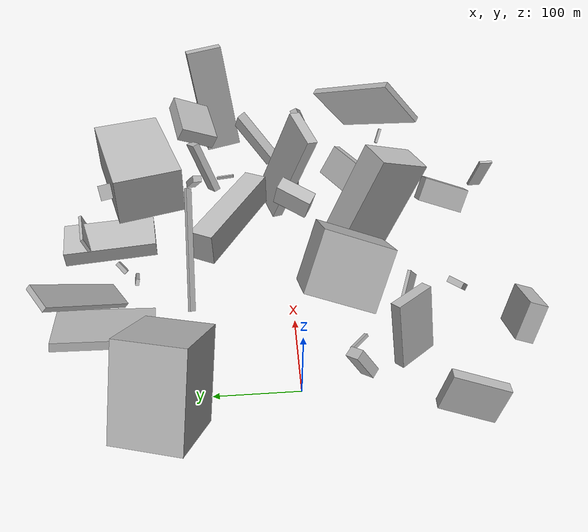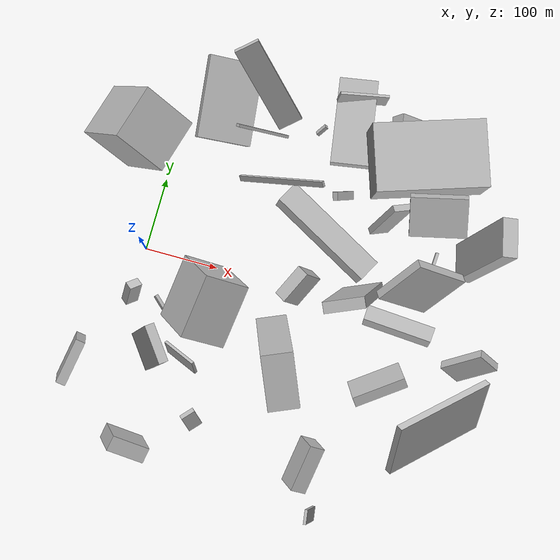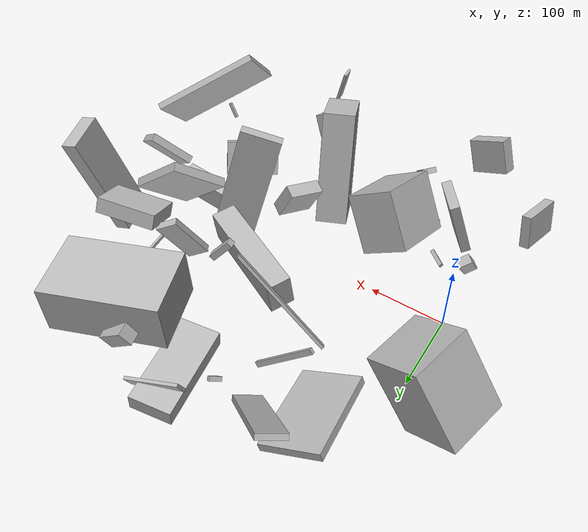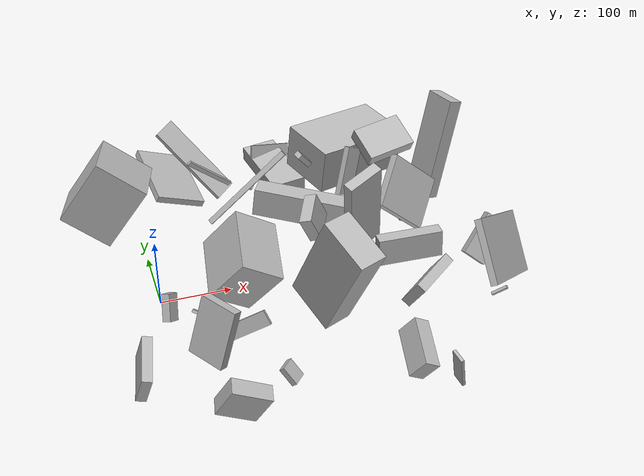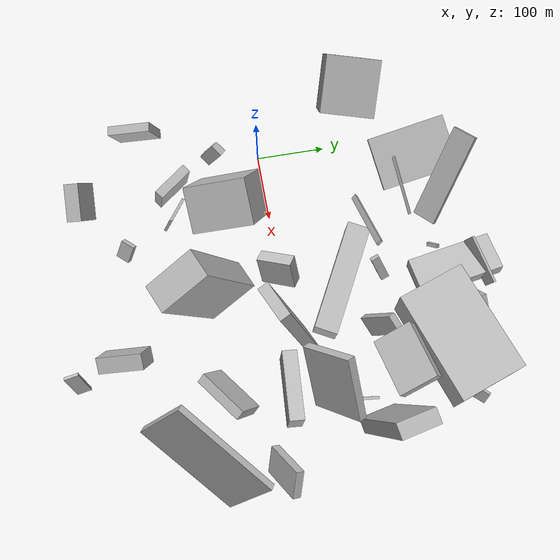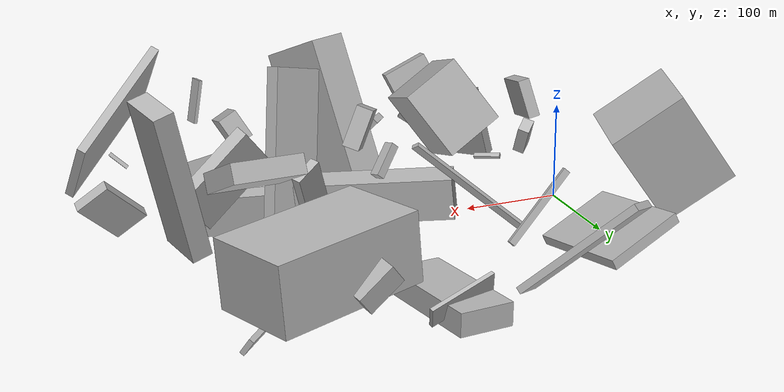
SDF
<sdf version="1.6">
 <world name="default">
  <scene>
   <sky><clouds><speed>12</speed></clouds></sky>
   <ambient>0.4 0.4 0.4 1</ambient>
   <background>0.7 0.7 0.7 1</background>
   <shadows>1</shadows>
  </scene>
  <gravity>0 0 -9.8066</gravity>
  <magnetic_field>6e-06 2.3e-05 -4.2e-05</magnetic_field>
  <physics default="0" name="default_physics" type="ode">
   <ode>
    <solver>
     <type>quick</type>
     <iters>10</iters>
     <sor>1.0</sor>
     <use_dynamic_moi_rescaling>0</use_dynamic_moi_rescaling>
    </solver>
    <constraints>
     <cfm>0</cfm>
     <erp>0.2</erp>
     <contact_max_correcting_vel>100</contact_max_correcting_vel>
     <contact_surface_layer>0.001</contact_surface_layer>
    </constraints>
   </ode>
   <max_step_size>0.004</max_step_size>
   <real_time_factor>1</real_time_factor>
   <real_time_update_rate>250</real_time_update_rate>
  </physics>
  <light name="sun" type="directional">
   <pose>0 0 10 0 0 0</pose>
   <diffuse>0.8 0.8 0.8 1</diffuse>
   <specular>0.2 0.2 0.2 1</specular>
   <attenuation>
    <range>1000</range>
    <constant>0.9</constant>
    <linear>0.01</linear>
    <quadratic>0.001</quadratic>
   </attenuation>
   <direction>-0.5 0.1 -0.9</direction>
  </light>
  <model name="building_1">
   <static>0</static>
   <pose>183.7656824990483 215.1772677772301 13.18505161402205 0.868023495289485 0.6341393850057752 1.979506501012383</pose>
   <link name="link">
    <gravity>0</gravity>
    <pose>0 0 8.5 0 0 0</pose>
    <collision name="collision"><geometry><box><size>6 5 17</size></box></geometry></collision>
    <visual name="visual">
     <cast_shadows>0</cast_shadows>
     <geometry><box><size>6 5 17</size></box></geometry>
     <material>
      <script>
       <uri>model://HANNAS_wall/materials/scripts</uri>
       <uri>model://HANNAS_wall/materials/textures</uri>
       <name>vrc/HANNAS_wall</name>
      </script>
     </material>
    </visual>
   </link>
  </model>
  <model name="building_2">
   <static>0</static>
   <pose>56.90916947968519 217.05032457564207 52.09813051518027 0.4070113594931677 -0.15752957323010147 1.6744178624201516</pose>
   <link name="link">
    <gravity>0</gravity>
    <pose>0 0 5.0 0 0 0</pose>
    <collision name="collision"><geometry><box><size>111 76 10</size></box></geometry></collision>
    <visual name="visual">
     <cast_shadows>0</cast_shadows>
     <geometry><box><size>111 76 10</size></box></geometry>
     <material>
      <script>
       <uri>model://HANNAS_wall/materials/scripts</uri>
       <uri>model://HANNAS_wall/materials/textures</uri>
       <name>vrc/HANNAS_wall</name>
      </script>
     </material>
    </visual>
   </link>
  </model>
  <model name="building_3">
   <static>0</static>
   <pose>237.85646500646104 180.78357534931027 27.24427620281396 0.8002739959468044 -1.5165271408123409 -2.2192195408382007</pose>
   <link name="link">
    <gravity>0</gravity>
    <pose>0 0 59.0 0 0 0</pose>
    <collision name="collision"><geometry><box><size>22 53 118</size></box></geometry></collision>
    <visual name="visual">
     <cast_shadows>0</cast_shadows>
     <geometry><box><size>22 53 118</size></box></geometry>
     <material>
      <script>
       <uri>model://HANNAS_wall/materials/scripts</uri>
       <uri>model://HANNAS_wall/materials/textures</uri>
       <name>vrc/HANNAS_wall</name>
      </script>
     </material>
    </visual>
   </link>
  </model>
  <model name="building_4">
   <static>0</static>
   <pose>130.29907278423997 -55.79213230706333 76.49266613910022 0.9673091260209584 0.313764300948583 -1.720796992951557</pose>
   <link name="link">
    <gravity>0</gravity>
    <pose>0 0 31.5 0 0 0</pose>
    <collision name="collision"><geometry><box><size>86 76 63</size></box></geometry></collision>
    <visual name="visual">
     <cast_shadows>0</cast_shadows>
     <geometry><box><size>86 76 63</size></box></geometry>
     <material>
      <script>
       <uri>model://HANNAS_wall/materials/scripts</uri>
       <uri>model://HANNAS_wall/materials/textures</uri>
       <name>vrc/HANNAS_wall</name>
      </script>
     </material>
    </visual>
   </link>
  </model>
  <model name="building_5">
   <static>0</static>
   <pose>273.6691745279529 -224.877068779237 45.647982030382884 -2.6077654432072617 -0.9615146072199113 -0.6024746102903734</pose>
   <link name="link">
    <gravity>0</gravity>
    <pose>0 0 11.0 0 0 0</pose>
    <collision name="collision"><geometry><box><size>33 65 22</size></box></geometry></collision>
    <visual name="visual">
     <cast_shadows>0</cast_shadows>
     <geometry><box><size>33 65 22</size></box></geometry>
     <material>
      <script>
       <uri>model://HANNAS_wall/materials/scripts</uri>
       <uri>model://HANNAS_wall/materials/textures</uri>
       <name>vrc/HANNAS_wall</name>
      </script>
     </material>
    </visual>
   </link>
  </model>
  <model name="building_6">
   <static>0</static>
   <pose>52.31175902428168 -126.8130893681896 46.57757984748474 0.2684290313560819 -1.2580120421396006 0.3782548450310599</pose>
   <link name="link">
    <gravity>0</gravity>
    <pose>0 0 6.5 0 0 0</pose>
    <collision name="collision"><geometry><box><size>83 53 13</size></box></geometry></collision>
    <visual name="visual">
     <cast_shadows>0</cast_shadows>
     <geometry><box><size>83 53 13</size></box></geometry>
     <material>
      <script>
       <uri>model://HANNAS_wall/materials/scripts</uri>
       <uri>model://HANNAS_wall/materials/textures</uri>
       <name>vrc/HANNAS_wall</name>
      </script>
     </material>
    </visual>
   </link>
  </model>
  <model name="building_7">
   <static>0</static>
   <pose>406.91107949246066 231.18696468238056 64.78650028004029 0.7598142063750126 -1.4962990023129554 -0.4368292424909095</pose>
   <link name="link">
    <gravity>0</gravity>
    <pose>0 0 75.0 0 0 0</pose>
    <collision name="collision"><geometry><box><size>67 91 150</size></box></geometry></collision>
    <visual name="visual">
     <cast_shadows>0</cast_shadows>
     <geometry><box><size>67 91 150</size></box></geometry>
     <material>
      <script>
       <uri>model://HANNAS_wall/materials/scripts</uri>
       <uri>model://HANNAS_wall/materials/textures</uri>
       <name>vrc/HANNAS_wall</name>
      </script>
     </material>
    </visual>
   </link>
  </model>
  <model name="building_8">
   <static>0</static>
   <pose>430.0526990817268 122.81994496282891 115.9324039697531 1.4802108564050804 0.2553690042142439 0.19338215080818283</pose>
   <link name="link">
    <gravity>0</gravity>
    <pose>0 0 25.0 0 0 0</pose>
    <collision name="collision"><geometry><box><size>20 150 50</size></box></geometry></collision>
    <visual name="visual">
     <cast_shadows>0</cast_shadows>
     <geometry><box><size>20 150 50</size></box></geometry>
     <material>
      <script>
       <uri>model://HANNAS_wall/materials/scripts</uri>
       <uri>model://HANNAS_wall/materials/textures</uri>
       <name>vrc/HANNAS_wall</name>
      </script>
     </material>
    </visual>
   </link>
  </model>
  <model name="building_9">
   <static>0</static>
   <pose>315.45439584504356 172.39535299972084 63.69635908313899 -1.7322683854008585 -0.903244554003196 0.32324809647465974</pose>
   <link name="link">
    <gravity>0</gravity>
    <pose>0 0 43.5 0 0 0</pose>
    <collision name="collision"><geometry><box><size>21 40 87</size></box></geometry></collision>
    <visual name="visual">
     <cast_shadows>0</cast_shadows>
     <geometry><box><size>21 40 87</size></box></geometry>
     <material>
      <script>
       <uri>model://HANNAS_wall/materials/scripts</uri>
       <uri>model://HANNAS_wall/materials/textures</uri>
       <name>vrc/HANNAS_wall</name>
      </script>
     </material>
    </visual>
   </link>
  </model>
  <model name="building_10">
   <static>0</static>
   <pose>-11.710465767601436 129.25660022159343 75.61717747808243 -0.12285618103321794 -0.9519402527596168 -0.16509118862528666</pose>
   <link name="link">
    <gravity>0</gravity>
    <pose>0 0 39.5 0 0 0</pose>
    <collision name="collision"><geometry><box><size>102 75 79</size></box></geometry></collision>
    <visual name="visual">
     <cast_shadows>0</cast_shadows>
     <geometry><box><size>102 75 79</size></box></geometry>
     <material>
      <script>
       <uri>model://HANNAS_wall/materials/scripts</uri>
       <uri>model://HANNAS_wall/materials/textures</uri>
       <name>vrc/HANNAS_wall</name>
      </script>
     </material>
    </visual>
   </link>
  </model>
  <model name="building_11">
   <static>0</static>
   <pose>306.55035668294823 -275.4601926129868 56.57310319305215 -1.9721163946193394 -1.3393458660531432 -2.6087009277239046</pose>
   <link name="link">
    <gravity>0</gravity>
    <pose>0 0 9.5 0 0 0</pose>
    <collision name="collision"><geometry><box><size>49 4 19</size></box></geometry></collision>
    <visual name="visual">
     <cast_shadows>0</cast_shadows>
     <geometry><box><size>49 4 19</size></box></geometry>
     <material>
      <script>
       <uri>model://HANNAS_wall/materials/scripts</uri>
       <uri>model://HANNAS_wall/materials/textures</uri>
       <name>vrc/HANNAS_wall</name>
      </script>
     </material>
    </visual>
   </link>
  </model>
  <model name="building_12">
   <static>0</static>
   <pose>234.62433607947577 -98.77151466072898 85.74702960487788 1.5740414412247332 -1.1503636839526479 -1.16973711844705</pose>
   <link name="link">
    <gravity>0</gravity>
    <pose>0 0 20.5 0 0 0</pose>
    <collision name="collision"><geometry><box><size>150 75 41</size></box></geometry></collision>
    <visual name="visual">
     <cast_shadows>0</cast_shadows>
     <geometry><box><size>150 75 41</size></box></geometry>
     <material>
      <script>
       <uri>model://HANNAS_wall/materials/scripts</uri>
       <uri>model://HANNAS_wall/materials/textures</uri>
       <name>vrc/HANNAS_wall</name>
      </script>
     </material>
    </visual>
   </link>
  </model>
  <model name="building_13">
   <static>0</static>
   <pose>230.3400113575669 268.7258989973421 32.768284998335474 0.24769757803950357 0.2976752037097686 1.903202466230959</pose>
   <link name="link">
    <gravity>0</gravity>
    <pose>0 0 10.0 0 0 0</pose>
    <collision name="collision"><geometry><box><size>4 69 20</size></box></geometry></collision>
    <visual name="visual">
     <cast_shadows>0</cast_shadows>
     <geometry><box><size>4 69 20</size></box></geometry>
     <material>
      <script>
       <uri>model://HANNAS_wall/materials/scripts</uri>
       <uri>model://HANNAS_wall/materials/textures</uri>
       <name>vrc/HANNAS_wall</name>
      </script>
     </material>
    </visual>
   </link>
  </model>
  <model name="building_14">
   <static>0</static>
   <pose>438.4126754954425 -134.5976643888128 99.17368791053687 2.1105194214577434 -0.4654145089921328 -2.406675912722828</pose>
   <link name="link">
    <gravity>0</gravity>
    <pose>0 0 4.5 0 0 0</pose>
    <collision name="collision"><geometry><box><size>150 85 9</size></box></geometry></collision>
    <visual name="visual">
     <cast_shadows>0</cast_shadows>
     <geometry><box><size>150 85 9</size></box></geometry>
     <material>
      <script>
       <uri>model://HANNAS_wall/materials/scripts</uri>
       <uri>model://HANNAS_wall/materials/textures</uri>
       <name>vrc/HANNAS_wall</name>
      </script>
     </material>
    </visual>
   </link>
  </model>
  <model name="building_15">
   <static>0</static>
   <pose>365.4150077433613 130.17914168544212 114.38745218722381 -0.08754944426793942 -0.4729184171663172 1.8249934270352632</pose>
   <link name="link">
    <gravity>0</gravity>
    <pose>0 0 9.5 0 0 0</pose>
    <collision name="collision"><geometry><box><size>52 74 19</size></box></geometry></collision>
    <visual name="visual">
     <cast_shadows>0</cast_shadows>
     <geometry><box><size>52 74 19</size></box></geometry>
     <material>
      <script>
       <uri>model://HANNAS_wall/materials/scripts</uri>
       <uri>model://HANNAS_wall/materials/textures</uri>
       <name>vrc/HANNAS_wall</name>
      </script>
     </material>
    </visual>
   </link>
  </model>
  <model name="building_16">
   <static>0</static>
   <pose>346.614084265618 -92.17450960242545 36.2117826516 2.105097452217446 -0.0997429145152765 0.6285388737522721</pose>
   <link name="link">
    <gravity>0</gravity>
    <pose>0 0 7.0 0 0 0</pose>
    <collision name="collision"><geometry><box><size>73 47 14</size></box></geometry></collision>
    <visual name="visual">
     <cast_shadows>0</cast_shadows>
     <geometry><box><size>73 47 14</size></box></geometry>
     <material>
      <script>
       <uri>model://HANNAS_wall/materials/scripts</uri>
       <uri>model://HANNAS_wall/materials/textures</uri>
       <name>vrc/HANNAS_wall</name>
      </script>
     </material>
    </visual>
   </link>
  </model>
  <model name="building_17">
   <static>0</static>
   <pose>103.61592015722023 253.30594984986942 57.351646404670255 -0.3276990117985846 -0.7441111393026004 2.468975856939384</pose>
   <link name="link">
    <gravity>0</gravity>
    <pose>0 0 3.5 0 0 0</pose>
    <collision name="collision"><geometry><box><size>136 35 7</size></box></geometry></collision>
    <visual name="visual">
     <cast_shadows>0</cast_shadows>
     <geometry><box><size>136 35 7</size></box></geometry>
     <material>
      <script>
       <uri>model://HANNAS_wall/materials/scripts</uri>
       <uri>model://HANNAS_wall/materials/textures</uri>
       <name>vrc/HANNAS_wall</name>
      </script>
     </material>
    </visual>
   </link>
  </model>
  <model name="building_18">
   <static>0</static>
   <pose>383.4047254486437 86.82607258841477 5.051471362545083 -0.1949318549626853 0.20340806148944746 -0.11987422337994481</pose>
   <link name="link">
    <gravity>0</gravity>
    <pose>0 0 2.0 0 0 0</pose>
    <collision name="collision"><geometry><box><size>4 26 4</size></box></geometry></collision>
    <visual name="visual">
     <cast_shadows>0</cast_shadows>
     <geometry><box><size>4 26 4</size></box></geometry>
     <material>
      <script>
       <uri>model://HANNAS_wall/materials/scripts</uri>
       <uri>model://HANNAS_wall/materials/textures</uri>
       <name>vrc/HANNAS_wall</name>
      </script>
     </material>
    </visual>
   </link>
  </model>
  <model name="building_19">
   <static>0</static>
   <pose>292.2406733460935 -7.70239049727976 94.20139741213627 0.8687904328087365 -1.2366782928786677 -2.0324328642214593</pose>
   <link name="link">
    <gravity>0</gravity>
    <pose>0 0 7.5 0 0 0</pose>
    <collision name="collision"><geometry><box><size>150 54 15</size></box></geometry></collision>
    <visual name="visual">
     <cast_shadows>0</cast_shadows>
     <geometry><box><size>150 54 15</size></box></geometry>
     <material>
      <script>
       <uri>model://HANNAS_wall/materials/scripts</uri>
       <uri>model://HANNAS_wall/materials/textures</uri>
       <name>vrc/HANNAS_wall</name>
      </script>
     </material>
    </visual>
   </link>
  </model>
  <model name="building_20">
   <static>0</static>
   <pose>356.74004751710095 -24.033367252910917 31.27039954644006 1.649965955831647 0.04002680964701832 3.068542311101669</pose>
   <link name="link">
    <gravity>0</gravity>
    <pose>0 0 10.0 0 0 0</pose>
    <collision name="collision"><geometry><box><size>93 40 20</size></box></geometry></collision>
    <visual name="visual">
     <cast_shadows>0</cast_shadows>
     <geometry><box><size>93 40 20</size></box></geometry>
     <material>
      <script>
       <uri>model://HANNAS_wall/materials/scripts</uri>
       <uri>model://HANNAS_wall/materials/textures</uri>
       <name>vrc/HANNAS_wall</name>
      </script>
     </material>
    </visual>
   </link>
  </model>
  <model name="building_21">
   <static>0</static>
   <pose>413.11509413372573 239.48371191787655 15.439065170003225 -1.528886652461712 -0.9697768747996016 2.3682592440149146</pose>
   <link name="link">
    <gravity>0</gravity>
    <pose>0 0 35.5 0 0 0</pose>
    <collision name="collision"><geometry><box><size>17 5 71</size></box></geometry></collision>
    <visual name="visual">
     <cast_shadows>0</cast_shadows>
     <geometry><box><size>17 5 71</size></box></geometry>
     <material>
      <script>
       <uri>model://HANNAS_wall/materials/scripts</uri>
       <uri>model://HANNAS_wall/materials/textures</uri>
       <name>vrc/HANNAS_wall</name>
      </script>
     </material>
    </visual>
   </link>
  </model>
  <model name="building_22">
   <static>0</static>
   <pose>68.06395700060875 -122.50578224813225 32.70623626261462 -0.497423717968656 0.8993224456113381 -1.0138181827468176</pose>
   <link name="link">
    <gravity>0</gravity>
    <pose>0 0 29.5 0 0 0</pose>
    <collision name="collision"><geometry><box><size>20 4 59</size></box></geometry></collision>
    <visual name="visual">
     <cast_shadows>0</cast_shadows>
     <geometry><box><size>20 4 59</size></box></geometry>
     <material>
      <script>
       <uri>model://HANNAS_wall/materials/scripts</uri>
       <uri>model://HANNAS_wall/materials/textures</uri>
       <name>vrc/HANNAS_wall</name>
      </script>
     </material>
    </visual>
   </link>
  </model>
  <model name="building_23">
   <static>0</static>
   <pose>54.84913687612267 -80.22944398348424 24.793724353473067 -1.4210892863558524 0.5758910260173968 0.904817868035118</pose>
   <link name="link">
    <gravity>0</gravity>
    <pose>0 0 14.5 0 0 0</pose>
    <collision name="collision"><geometry><box><size>5 4 29</size></box></geometry></collision>
    <visual name="visual">
     <cast_shadows>0</cast_shadows>
     <geometry><box><size>5 4 29</size></box></geometry>
     <material>
      <script>
       <uri>model://HANNAS_wall/materials/scripts</uri>
       <uri>model://HANNAS_wall/materials/textures</uri>
       <name>vrc/HANNAS_wall</name>
      </script>
     </material>
    </visual>
   </link>
  </model>
  <model name="building_24">
   <static>0</static>
   <pose>53.775090748207276 -249.6826508709952 57.32016512865428 2.055927656479416 -1.0669245545659793 -0.627786634299869</pose>
   <link name="link">
    <gravity>0</gravity>
    <pose>0 0 10.5 0 0 0</pose>
    <collision name="collision"><geometry><box><size>47 52 21</size></box></geometry></collision>
    <visual name="visual">
     <cast_shadows>0</cast_shadows>
     <geometry><box><size>47 52 21</size></box></geometry>
     <material>
      <script>
       <uri>model://HANNAS_wall/materials/scripts</uri>
       <uri>model://HANNAS_wall/materials/textures</uri>
       <name>vrc/HANNAS_wall</name>
      </script>
     </material>
    </visual>
   </link>
  </model>
  <model name="building_25">
   <static>0</static>
   <pose>-54.22007495459043 -171.92739023525922 52.4900029144099 -2.380780870405784 -1.2172668835426612 -0.9272827648237154</pose>
   <link name="link">
    <gravity>0</gravity>
    <pose>0 0 6.5 0 0 0</pose>
    <collision name="collision"><geometry><box><size>44 63 13</size></box></geometry></collision>
    <visual name="visual">
     <cast_shadows>0</cast_shadows>
     <geometry><box><size>44 63 13</size></box></geometry>
     <material>
      <script>
       <uri>model://HANNAS_wall/materials/scripts</uri>
       <uri>model://HANNAS_wall/materials/textures</uri>
       <name>vrc/HANNAS_wall</name>
      </script>
     </material>
    </visual>
   </link>
  </model>
  <model name="building_26">
   <static>0</static>
   <pose>297.39320200550765 99.460855432478 55.92981596694179 -0.4620188071587818 -0.16552370114286227 -1.027534167907075</pose>
   <link name="link">
    <gravity>0</gravity>
    <pose>0 0 35.5 0 0 0</pose>
    <collision name="collision"><geometry><box><size>9 28 71</size></box></geometry></collision>
    <visual name="visual">
     <cast_shadows>0</cast_shadows>
     <geometry><box><size>9 28 71</size></box></geometry>
     <material>
      <script>
       <uri>model://HANNAS_wall/materials/scripts</uri>
       <uri>model://HANNAS_wall/materials/textures</uri>
       <name>vrc/HANNAS_wall</name>
      </script>
     </material>
    </visual>
   </link>
  </model>
  <model name="building_27">
   <static>0</static>
   <pose>209.0036135039112 -2.560750029084585 100.2414364206083 1.2369334838455492 -0.28893749415398723 1.1071891490684993</pose>
   <link name="link">
    <gravity>0</gravity>
    <pose>0 0 8.5 0 0 0</pose>
    <collision name="collision"><geometry><box><size>46 42 17</size></box></geometry></collision>
    <visual name="visual">
     <cast_shadows>0</cast_shadows>
     <geometry><box><size>46 42 17</size></box></geometry>
     <material>
      <script>
       <uri>model://HANNAS_wall/materials/scripts</uri>
       <uri>model://HANNAS_wall/materials/textures</uri>
       <name>vrc/HANNAS_wall</name>
      </script>
     </material>
    </visual>
   </link>
  </model>
  <model name="building_28">
   <static>0</static>
   <pose>131.0833110886484 -213.31238587196287 18.4440348379452 0.7434777973126696 -0.01688365571297652 -2.308094991431476</pose>
   <link name="link">
    <gravity>0</gravity>
    <pose>0 0 13.0 0 0 0</pose>
    <collision name="collision"><geometry><box><size>20 8 26</size></box></geometry></collision>
    <visual name="visual">
     <cast_shadows>0</cast_shadows>
     <geometry><box><size>20 8 26</size></box></geometry>
     <material>
      <script>
       <uri>model://HANNAS_wall/materials/scripts</uri>
       <uri>model://HANNAS_wall/materials/textures</uri>
       <name>vrc/HANNAS_wall</name>
      </script>
     </material>
    </visual>
   </link>
  </model>
  <model name="building_29">
   <static>0</static>
   <pose>155.51153465562984 123.5645356696333 79.42454297559327 2.2621753233234116 -0.5436779678803438 2.13454185044041</pose>
   <link name="link">
    <gravity>0</gravity>
    <pose>0 0 2.0 0 0 0</pose>
    <collision name="collision"><geometry><box><size>8 150 4</size></box></geometry></collision>
    <visual name="visual">
     <cast_shadows>0</cast_shadows>
     <geometry><box><size>8 150 4</size></box></geometry>
     <material>
      <script>
       <uri>model://HANNAS_wall/materials/scripts</uri>
       <uri>model://HANNAS_wall/materials/textures</uri>
       <name>vrc/HANNAS_wall</name>
      </script>
     </material>
    </visual>
   </link>
  </model>
  <model name="building_30">
   <static>0</static>
   <pose>1.5641342700256249 -75.17293945734215 30.566254371590226 0.4969672797810947 0.2892704848954198 2.451903782384774</pose>
   <link name="link">
    <gravity>0</gravity>
    <pose>0 0 18.0 0 0 0</pose>
    <collision name="collision"><geometry><box><size>12 18 36</size></box></geometry></collision>
    <visual name="visual">
     <cast_shadows>0</cast_shadows>
     <geometry><box><size>12 18 36</size></box></geometry>
     <material>
      <script>
       <uri>model://HANNAS_wall/materials/scripts</uri>
       <uri>model://HANNAS_wall/materials/textures</uri>
       <name>vrc/HANNAS_wall</name>
      </script>
     </material>
    </visual>
   </link>
  </model>
  <model name="building_31">
   <static>0</static>
   <pose>402.0695462858952 39.927578451410035 57.35212485100868 -0.5592657696110315 -0.6741369637614836 0.8794978630105216</pose>
   <link name="link">
    <gravity>0</gravity>
    <pose>0 0 43.5 0 0 0</pose>
    <collision name="collision"><geometry><box><size>77 12 87</size></box></geometry></collision>
    <visual name="visual">
     <cast_shadows>0</cast_shadows>
     <geometry><box><size>77 12 87</size></box></geometry>
     <material>
      <script>
       <uri>model://HANNAS_wall/materials/scripts</uri>
       <uri>model://HANNAS_wall/materials/textures</uri>
       <name>vrc/HANNAS_wall</name>
      </script>
     </material>
    </visual>
   </link>
  </model>
  <model name="building_32">
   <static>0</static>
   <pose>237.9818853302724 119.69354620267147 112.94101387030327 0.8574066527003389 -0.22517212820482757 1.8597548981724505</pose>
   <link name="link">
    <gravity>0</gravity>
    <pose>0 0 4.0 0 0 0</pose>
    <collision name="collision"><geometry><box><size>11 33 8</size></box></geometry></collision>
    <visual name="visual">
     <cast_shadows>0</cast_shadows>
     <geometry><box><size>11 33 8</size></box></geometry>
     <material>
      <script>
       <uri>model://HANNAS_wall/materials/scripts</uri>
       <uri>model://HANNAS_wall/materials/textures</uri>
       <name>vrc/HANNAS_wall</name>
      </script>
     </material>
    </visual>
   </link>
  </model>
  <model name="building_33">
   <static>0</static>
   <pose>460.6081745803908 -36.305357322918944 37.12977387074516 0.9398801564796956 -0.7224008998567776 0.511668173760283</pose>
   <link name="link">
    <gravity>0</gravity>
    <pose>0 0 5.5 0 0 0</pose>
    <collision name="collision"><geometry><box><size>65 37 11</size></box></geometry></collision>
    <visual name="visual">
     <cast_shadows>0</cast_shadows>
     <geometry><box><size>65 37 11</size></box></geometry>
     <material>
      <script>
       <uri>model://HANNAS_wall/materials/scripts</uri>
       <uri>model://HANNAS_wall/materials/textures</uri>
       <name>vrc/HANNAS_wall</name>
      </script>
     </material>
    </visual>
   </link>
  </model>
  <model name="building_34">
   <static>0</static>
   <pose>417.85101631190304 -153.54926889910507 37.317446193785834 0.830312443338325 -0.38021515278847373 1.4310346362011903</pose>
   <link name="link">
    <gravity>0</gravity>
    <pose>0 0 11.5 0 0 0</pose>
    <collision name="collision"><geometry><box><size>4 4 23</size></box></geometry></collision>
    <visual name="visual">
     <cast_shadows>0</cast_shadows>
     <geometry><box><size>4 4 23</size></box></geometry>
     <material>
      <script>
       <uri>model://HANNAS_wall/materials/scripts</uri>
       <uri>model://HANNAS_wall/materials/textures</uri>
       <name>vrc/HANNAS_wall</name>
      </script>
     </material>
    </visual>
   </link>
  </model>
  <model name="building_35">
   <static>0</static>
   <pose>229.8870425825188 75.51128400647971 42.181458437101014 0.09205739714383541 0.06857692925886134 1.081586931020191</pose>
   <link name="link">
    <gravity>0</gravity>
    <pose>0 0 20.5 0 0 0</pose>
    <collision name="collision"><geometry><box><size>31 150 41</size></box></geometry></collision>
    <visual name="visual">
     <cast_shadows>0</cast_shadows>
     <geometry><box><size>31 150 41</size></box></geometry>
     <material>
      <script>
       <uri>model://HANNAS_wall/materials/scripts</uri>
       <uri>model://HANNAS_wall/materials/textures</uri>
       <name>vrc/HANNAS_wall</name>
      </script>
     </material>
    </visual>
   </link>
  </model>
  <model name="building_36">
   <static>0</static>
   <pose>146.16233036309646 192.4087010193833 46.35561226224897 0.8118915239104888 0.277161196313212 -1.5750900083800594</pose>
   <link name="link">
    <gravity>0</gravity>
    <pose>0 0 43.0 0 0 0</pose>
    <collision name="collision"><geometry><box><size>4 7 86</size></box></geometry></collision>
    <visual name="visual">
     <cast_shadows>0</cast_shadows>
     <geometry><box><size>4 7 86</size></box></geometry>
     <material>
      <script>
       <uri>model://HANNAS_wall/materials/scripts</uri>
       <uri>model://HANNAS_wall/materials/textures</uri>
       <name>vrc/HANNAS_wall</name>
      </script>
     </material>
    </visual>
   </link>
  </model>
 </world>
</sdf>
